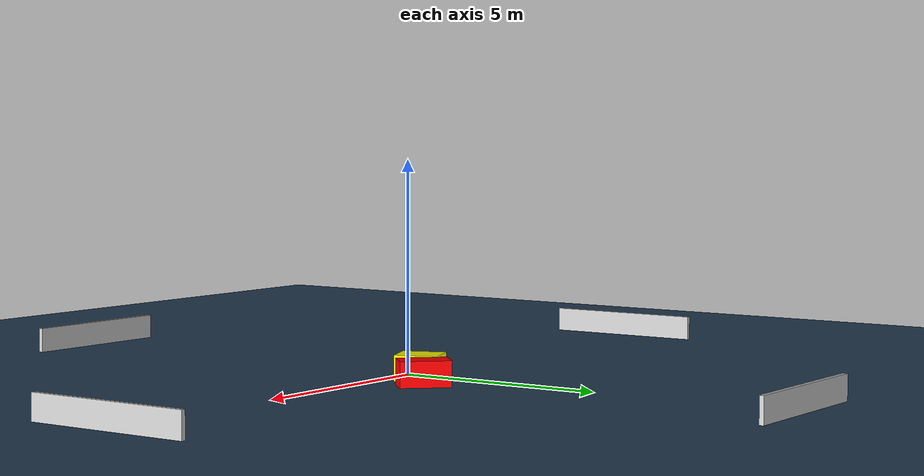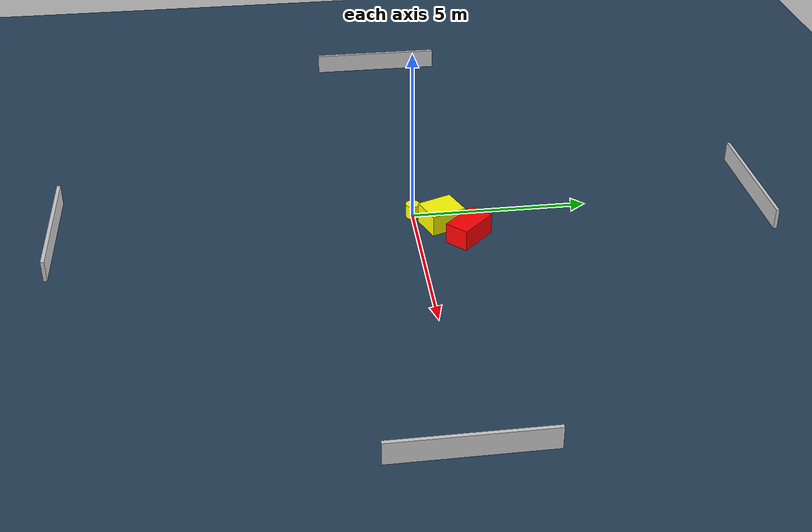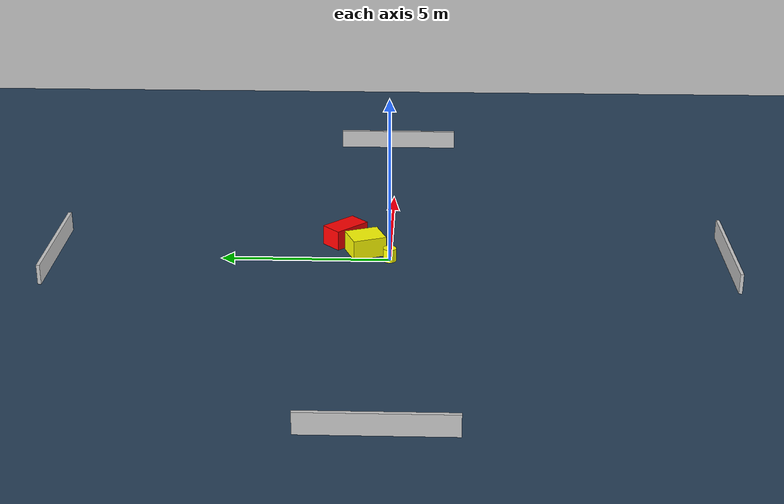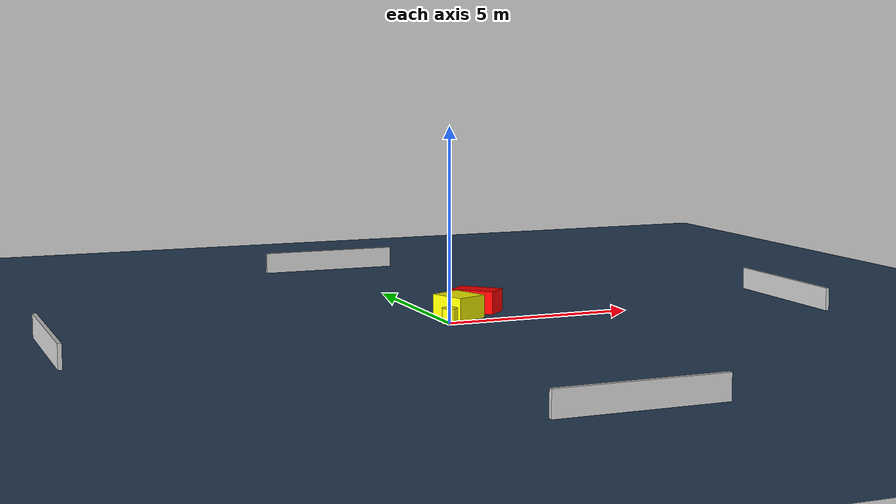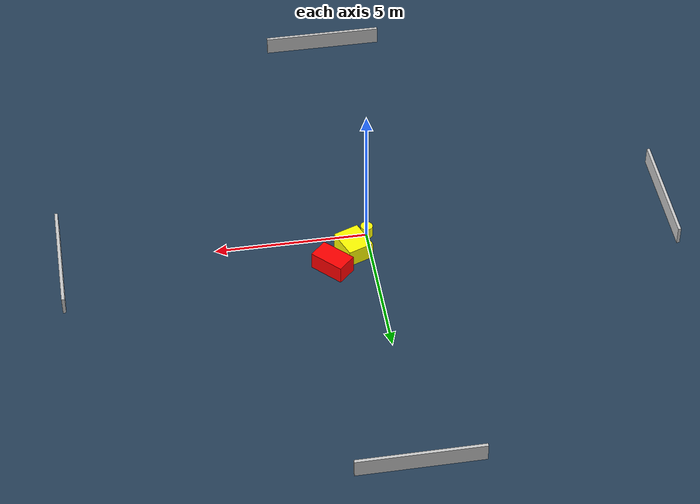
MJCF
<?xml version="1.0" ?>
<mujoco model="generated_environment">
  <option timestep="0.01" integrator="RK4" cone="elliptic"/>
  <default>
    <geom density="1"/>
  </default>
  <asset>
    <texture builtin="gradient" height="3072" name="skybox" rgb1="0.3 0.5 0.7" rgb2="0 0 0" type="skybox" width="512"/>
    <texture builtin="checker" height="300" name="groundplane" rgb1="0.2 0.3 0.4" rgb2="0.1 0.2 0.3" type="2d" width="300"/>
    <material name="groundplane" reflectance="0.2" texrepeat="5 5" texture="groundplane"/>
  </asset>
  <worldbody>
    <light dir="0 0 -1" directional="true" pos="0 0 1.5"/>
    <geom condim="3" friction="0.5 0.005 0.001" material="groundplane" name="floor" pos="0 0 0" size="0 0 0.05" type="plane"/>
    <body name="walls">
      <geom name="wall_1" condim="4" pos="-10.0 0.0 0.3" rgba="0.800000011920929 0.800000011920929 0.800000011920929 1.0" size="0.05 2.0 0.3" type="box"/>
      <geom name="wall_2" condim="4" pos="10.0 0.0 0.3" rgba="0.800000011920929 0.800000011920929 0.800000011920929 1.0" size="0.05 2.0 0.3" type="box"/>
      <geom name="wall_3" condim="4" pos="0.0 -10.0 0.3" rgba="0.800000011920929 0.800000011920929 0.800000011920929 1.0" size="2.0 0.05 0.3" type="box"/>
      <geom name="wall_4" condim="4" pos="0.0 10.0 0.3" rgba="0.800000011920929 0.800000011920929 0.800000011920929 1.0" size="2.0 0.05 0.3" type="box"/>
    </body>
    <body name="robot">
      <joint name="joint_x" type="slide" pos="0 0 0" axis="1 0 0"/>
      <joint name="joint_y" type="slide" pos="0 0 0" axis="0 1 0"/>
      <geom name="robot" type="cylinder" pos="0.0 0.0 0.2" size="0.2 0.2 0.0" mass="5.0" friction="1.0 0.005 0.0001" condim="4" rgba="1.0 1.0 0.0 1.0"/>
    </body>
    <body name="obstacle_1_movable">
      <geom name="obstacle_1_movable" condim="4" pos="0.5547911090433445 0.746197023578332 0.3" euler="0 0 291.3061666475141" friction="0.0 0.005 0.001" rgba="1.0 1.0 0.0 1.0" size="0.5089981675345396 0.4331270920366279 0.3" type="box" mass="0.1"/>
      <joint type="free"/>
    </body>
    <body name="obstacle_2_static">
      <geom name="obstacle_2_static" condim="4" pos="1.3393476289513009 1.3950122093086186 0.3" euler="0 0 134.19748431659923" friction="0.0 0.005 0.001" rgba="1.0 0.0 0.0 1.0" size="0.588095966395513 0.3434984632500463 0.3" type="box"/>
    </body>
  </worldbody>
  <actuator>
    <motor name="actuator_x" joint="joint_x" gear="1" ctrlrange="-1 1"/>
    <motor name="actuator_y" joint="joint_y" gear="1" ctrlrange="-1 1"/>
  </actuator>
</mujoco>
